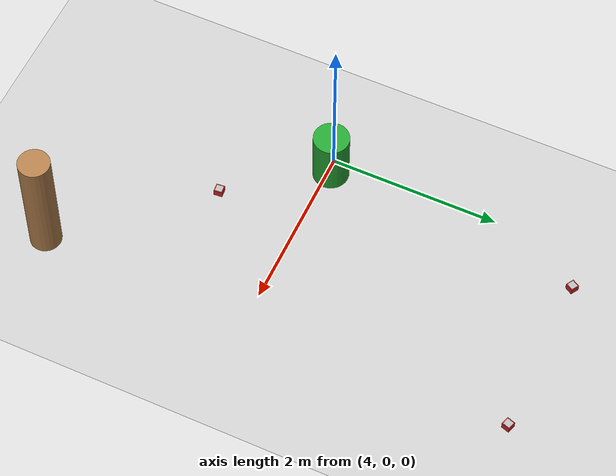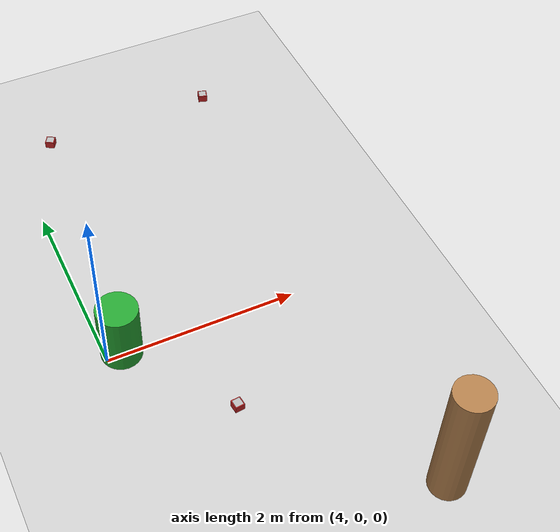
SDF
<sdf version="1.7">
 <world name="default">
  <model name="ground_plane">
   <static>1</static>
   <link name="link">
    <collision name="collision">
     <geometry><plane><normal>0 0 1</normal><size>100 100</size></plane></geometry>
     <surface><friction><ode><mu>100</mu><mu2>50</mu2></ode></friction></surface>
    </collision>
    <visual name="visual">
     <cast_shadows>0</cast_shadows>
     <geometry><plane><normal>0 0 1</normal><size>100 100</size></plane></geometry>
     <material>
      <script><uri>file://media/materials/scripts/gazebo.material</uri><name>Gazebo/Grey</name></script>
     </material>
    </visual>
   </link>
  </model>
  <model name="construction_cone_1">
   <pose>6.31383 -2.49412 0.728545 0 0 -4.3e-05</pose>
   <link name="link">
    <inertial>
     <mass>1</mass>
     <inertia><ixx>0.145833</ixx><ixy>0</ixy><ixz>0</ixz><iyy>0.145833</iyy><iyz>0</iyz><izz>0.125</izz></inertia>
    </inertial>
    <collision name="collision">
     <geometry><cylinder><radius>0.183096</radius><length>1.4571</length></cylinder></geometry>
    </collision>
    <visual name="visual">
     <geometry><cylinder><radius>0.183096</radius><length>1.4571</length></cylinder></geometry>
     <material>
      <script><name>Gazebo/Wood</name><uri>file://media/materials/scripts/gazebo.material</uri></script>
     </material>
    </visual>
   </link>
  </model>
  <model name="place_table_g">
   <static>1</static>
   <pose>4.16791 0.040706 0.345 0 -0 0</pose>
   <link name="link">
    <inertial>
     <mass>1</mass>
     <inertia><ixx>0.145833</ixx><ixy>0</ixy><ixz>0</ixz><iyy>0.145833</iyy><iyz>0</iyz><izz>0.125</izz></inertia>
    </inertial>
    <collision name="collision">
     <geometry><cylinder><radius>0.21</radius><length>0.69</length></cylinder></geometry>
    </collision>
    <visual name="visual">
     <geometry><cylinder><radius>0.21</radius><length>0.69</length></cylinder></geometry>
     <material>
      <script><name>Gazebo/Green</name><uri>file://media/materials/scripts/gazebo.material</uri></script>
     </material>
    </visual>
   </link>
  </model>
  <model name="poly_9">
   <pose>4.45643 3.10522 0.024997 -0.000102 -5e-06 2.60845</pose>
   <link name="poly_9_link">
    <inertial>
     <mass>0.7</mass>
     <inertia>
      <ixx>0.00016667</ixx>
      <ixy>0</ixy>
      <ixz>0</ixz>
      <iyy>0.00016667</iyy>
      <iyz>0</iyz>
      <izz>0.00016667</izz>
     </inertia>
    </inertial>
    <collision name="collision"><geometry><box><size>0.1 0.1 0.1</size></box></geometry></collision>
    <visual name="visual">
     <geometry><box><size>0.1 0.1 0.1</size></box></geometry>
     <material>
      <script><name>Gazebo/Red</name><uri>file://media/materials/scripts/gazebo.material</uri></script>
     </material>
    </visual>
   </link>
   <link name="tag9">
    <pose>0 0 0.051 0 -0 0</pose>
    <collision name="collision"><geometry><box><size>0.0825 0.0825 0.0001</size></box></geometry></collision>
    <visual name="visual">
     <cast_shadows>0</cast_shadows>
     <geometry><box><size>0.0825 0.0825 0.0001</size></box></geometry>
     <material>
      <script>
       <uri>model://artag/materials/scripts</uri>
       <uri>model://artag/materials/textures</uri>
       <name>material/artag9</name>
      </script>
     </material>
    </visual>
    <inertial>
     <inertia><ixx>0.0001</ixx><ixy>0</ixy><ixz>0</ixz><iyy>0.0001</iyy><iyz>0</iyz><izz>0.0001</izz></inertia>
     <mass>0.1</mass>
    </inertial>
   </link>
   <joint name="poly_9_tag9" type="fixed"><parent>poly_9_link</parent><child>tag9</child></joint>
  </model>
  <model name="poly_13">
   <pose>4.94043 -0.998995 0.024995 -0.000184 -0 0.097346</pose>
   <link name="poly_13_link">
    <inertial>
     <mass>0.7</mass>
     <inertia>
      <ixx>0.00016667</ixx>
      <ixy>0</ixy>
      <ixz>0</ixz>
      <iyy>0.00016667</iyy>
      <iyz>0</iyz>
      <izz>0.00016667</izz>
     </inertia>
    </inertial>
    <collision name="collision"><geometry><box><size>0.1 0.1 0.1</size></box></geometry></collision>
    <visual name="visual">
     <geometry><box><size>0.1 0.1 0.1</size></box></geometry>
     <material>
      <script><name>Gazebo/Red</name><uri>file://media/materials/scripts/gazebo.material</uri></script>
     </material>
    </visual>
   </link>
   <link name="tag13">
    <pose>0 0 0.051 0 -0 0</pose>
    <collision name="collision"><geometry><box><size>0.0825 0.0825 0.0001</size></box></geometry></collision>
    <visual name="visual">
     <cast_shadows>0</cast_shadows>
     <geometry><box><size>0.0825 0.0825 0.0001</size></box></geometry>
     <material>
      <script>
       <uri>model://artag/materials/scripts</uri>
       <uri>model://artag/materials/textures</uri>
       <name>material/artag13</name>
      </script>
     </material>
    </visual>
    <inertial>
     <inertia><ixx>0.0001</ixx><ixy>0</ixy><ixz>0</ixz><iyy>0.0001</iyy><iyz>0</iyz><izz>0.0001</izz></inertia>
     <mass>0.1</mass>
    </inertial>
   </link>
   <joint name="poly_13_tag13" type="fixed"><parent>poly_13_link</parent><child>tag13</child></joint>
  </model>
  <model name="poly_15">
   <pose>6.35752 3.11301 0.024995 0.000184 -0 2.83797</pose>
   <link name="poly_15_link">
    <inertial>
     <mass>0.7</mass>
     <inertia>
      <ixx>0.00016667</ixx>
      <ixy>0</ixy>
      <ixz>0</ixz>
      <iyy>0.00016667</iyy>
      <iyz>0</iyz>
      <izz>0.00016667</izz>
     </inertia>
    </inertial>
    <collision name="collision"><geometry><box><size>0.1 0.1 0.1</size></box></geometry></collision>
    <visual name="visual">
     <geometry><box><size>0.1 0.1 0.1</size></box></geometry>
     <material>
      <script><name>Gazebo/Red</name><uri>file://media/materials/scripts/gazebo.material</uri></script>
     </material>
    </visual>
   </link>
   <link name="tag15">
    <pose>0 0 0.051 0 -0 0</pose>
    <collision name="collision"><geometry><box><size>0.0825 0.0825 0.0001</size></box></geometry></collision>
    <visual name="visual">
     <cast_shadows>0</cast_shadows>
     <geometry><box><size>0.0825 0.0825 0.0001</size></box></geometry>
     <material>
      <script>
       <uri>model://artag/materials/scripts</uri>
       <uri>model://artag/materials/textures</uri>
       <name>material/artag15</name>
      </script>
     </material>
    </visual>
    <inertial>
     <inertia><ixx>0.0001</ixx><ixy>0</ixy><ixz>0</ixz><iyy>0.0001</iyy><iyz>0</iyz><izz>0.0001</izz></inertia>
     <mass>0.1</mass>
    </inertial>
   </link>
   <joint name="poly_15_tag15" type="fixed"><parent>poly_15_link</parent><child>tag15</child></joint>
  </model>
 </world>
</sdf>
